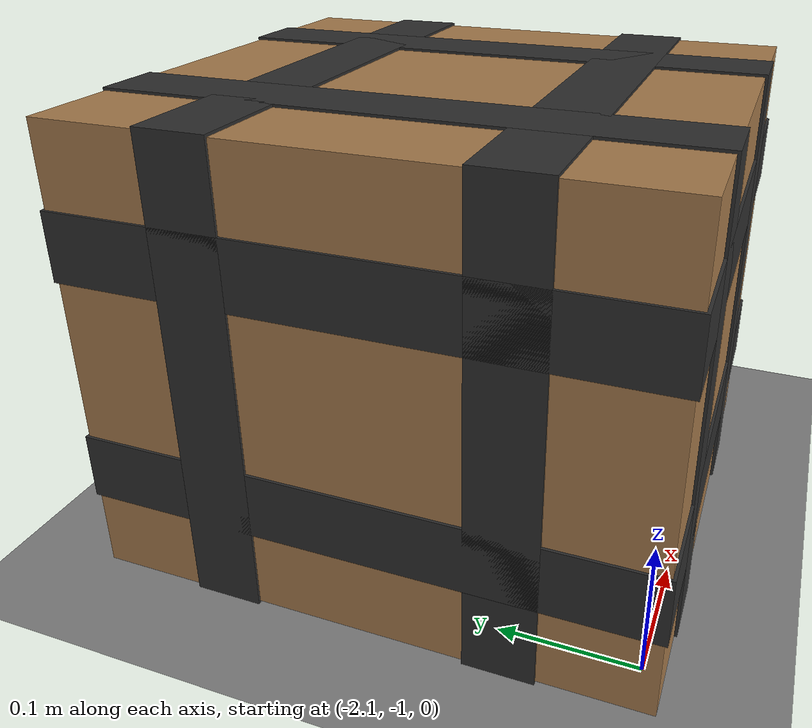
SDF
<sdf version="1.9">
 <world name="ecps295_lowbox_s36">
  <model name="ground_plane">
   <static>true</static>
   <link name="link">
    <collision name="collision">
     <geometry><plane><normal>0 0 1</normal><size>50 50</size></plane></geometry>
    </collision>
    <visual name="visual">
     <geometry><plane><normal>0 0 1</normal><size>50 50</size></plane></geometry>
     <material><ambient>0.5 0.5 0.5 1</ambient><diffuse>0.5 0.5 0.5 1</diffuse></material>
    </visual>
   </link>
  </model>
  <model name="lb2">
   <static>true</static>
   <pose>-1.94 -0.81 0.171 0 0 0</pose>
   <link name="link">
    <collision name="c"><geometry><box><size>0.39 0.41 0.34</size></box></geometry></collision>
    <visual name="v">
     <geometry><box><size>0.39 0.41 0.34</size></box></geometry>
     <material><ambient>0.65 0.48 0.30 1</ambient><diffuse>0.65 0.48 0.30 1</diffuse></material>
    </visual>
    <visual name="tape_ring0">
     <pose>0.000 0.000 -0.085 0 0 0</pose>
     <geometry><box><size>0.394 0.414 0.050</size></box></geometry>
     <material><ambient>0.18 0.18 0.18 1</ambient><diffuse>0.18 0.18 0.18 1</diffuse></material>
    </visual>
    <visual name="tape_bx0">
     <pose>-0.098 0.000 0.000 0 0 0</pose>
     <geometry><box><size>0.050 0.414 0.344</size></box></geometry>
     <material><ambient>0.18 0.18 0.18 1</ambient><diffuse>0.18 0.18 0.18 1</diffuse></material>
    </visual>
    <visual name="tape_by0">
     <pose>0.000 -0.102 0.000 0 0 0</pose>
     <geometry><box><size>0.394 0.050 0.344</size></box></geometry>
     <material><ambient>0.18 0.18 0.18 1</ambient><diffuse>0.18 0.18 0.18 1</diffuse></material>
    </visual>
    <visual name="tape_ring1">
     <pose>0.000 0.000 0.085 0 0 0</pose>
     <geometry><box><size>0.394 0.414 0.050</size></box></geometry>
     <material><ambient>0.18 0.18 0.18 1</ambient><diffuse>0.18 0.18 0.18 1</diffuse></material>
    </visual>
    <visual name="tape_bx1">
     <pose>0.098 0.000 0.000 0 0 0</pose>
     <geometry><box><size>0.050 0.414 0.344</size></box></geometry>
     <material><ambient>0.18 0.18 0.18 1</ambient><diffuse>0.18 0.18 0.18 1</diffuse></material>
    </visual>
    <visual name="tape_by1">
     <pose>0.000 0.102 0.000 0 0 0</pose>
     <geometry><box><size>0.394 0.050 0.344</size></box></geometry>
     <material><ambient>0.18 0.18 0.18 1</ambient><diffuse>0.18 0.18 0.18 1</diffuse></material>
    </visual>
   </link>
  </model>
 </world>
</sdf>
